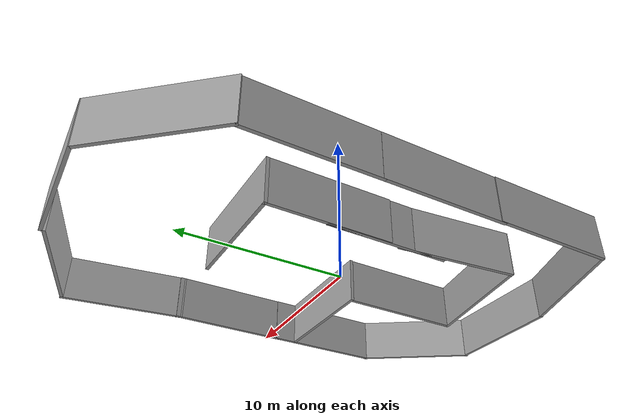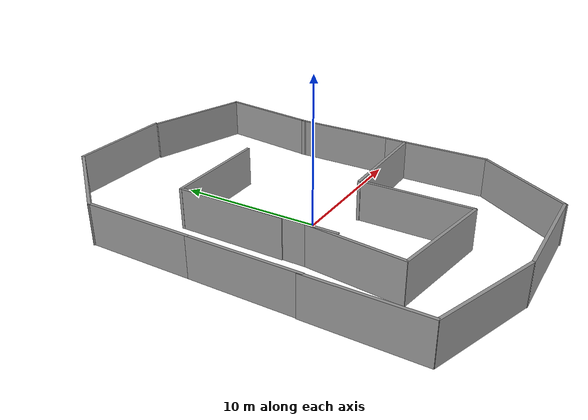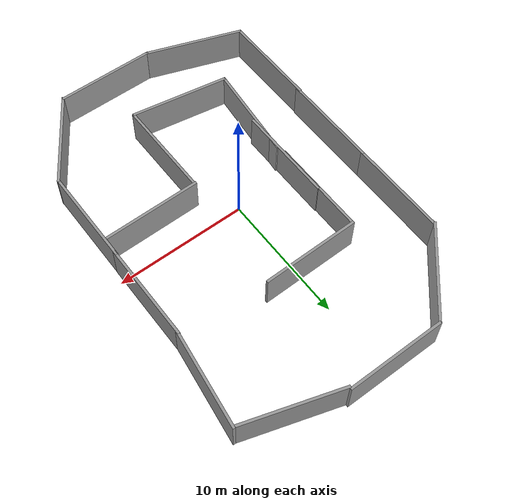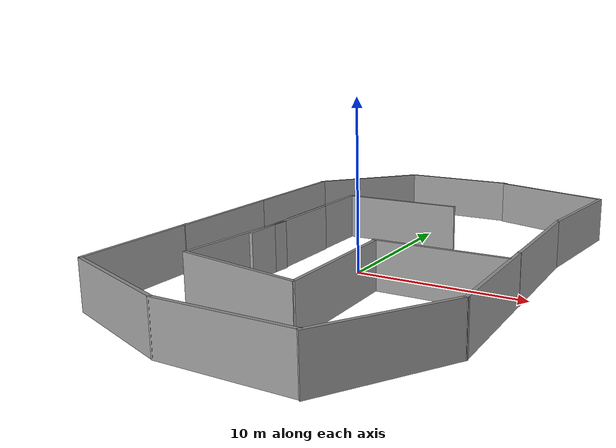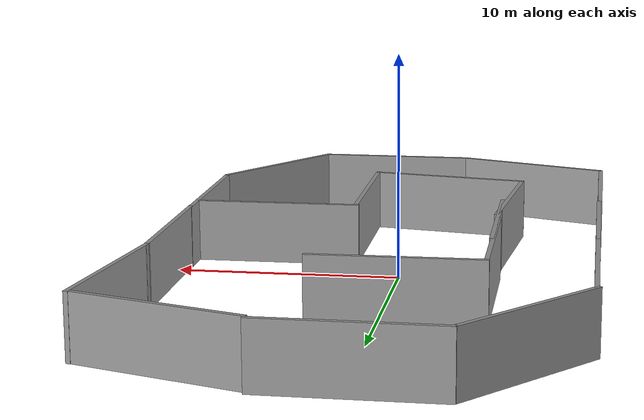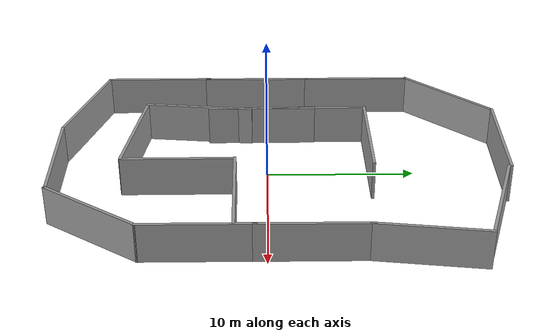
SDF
<?xml version='1.0'?>
<sdf version='1.7'>
  <model name='Untitled'>
    <model name='grey_wall'>
      <static>1</static>
      <link name='link'>
        <pose>0 0 1.4 0 -0 0</pose>
        <collision name='collision'>
          <geometry>
            <box>
              <size>7.5 0.2 2.8</size>
            </box>
          </geometry>
        </collision>
        <visual name='visual'>
          <cast_shadows>0</cast_shadows>
          <geometry>
            <box>
              <size>7.5 0.2 2.8</size>
            </box>
          </geometry>
          <material>
            <script>
              <uri>model://grey_wall/materials/scripts</uri>
              <uri>model://grey_wall/materials/textures</uri>
              <name>vrc/grey_wall</name>
            </script>
          </material>
        </visual>
      </link>
      <pose>-0.293283 15.9012 0 0 -0 0</pose>
    </model>
    <model name='grey_wall_clone'>
      <static>1</static>
      <link name='link'>
        <pose>0 0 1.4 0 -0 0</pose>
        <collision name='collision'>
          <geometry>
            <box>
              <size>7.5 0.2 2.8</size>
            </box>
          </geometry>
        </collision>
        <visual name='visual'>
          <cast_shadows>0</cast_shadows>
          <geometry>
            <box>
              <size>7.5 0.2 2.8</size>
            </box>
          </geometry>
          <material>
            <script>
              <uri>model://grey_wall/materials/scripts</uri>
              <uri>model://grey_wall/materials/textures</uri>
              <name>vrc/grey_wall</name>
            </script>
          </material>
        </visual>
      </link>
      <pose>-6.42083 13.0461 0 0 -0 0.861002</pose>
    </model>
    <model name='grey_wall_clone_0'>
      <static>1</static>
      <link name='link'>
        <pose>0 0 1.4 0 -0 0</pose>
        <collision name='collision'>
          <geometry>
            <box>
              <size>7.5 0.2 2.8</size>
            </box>
          </geometry>
        </collision>
        <visual name='visual'>
          <cast_shadows>0</cast_shadows>
          <geometry>
            <box>
              <size>7.5 0.2 2.8</size>
            </box>
          </geometry>
          <material>
            <script>
              <uri>model://grey_wall/materials/scripts</uri>
              <uri>model://grey_wall/materials/textures</uri>
              <name>vrc/grey_wall</name>
            </script>
          </material>
        </visual>
      </link>
      <pose>-8.75071 6.56529 0 0 -0 1.57059</pose>
    </model>
    <model name='grey_wall_clone_0_clone'>
      <static>1</static>
      <link name='link'>
        <pose>0 0 1.4 0 -0 0</pose>
        <collision name='collision'>
          <geometry>
            <box>
              <size>7.5 0.2 2.8</size>
            </box>
          </geometry>
        </collision>
        <visual name='visual'>
          <cast_shadows>0</cast_shadows>
          <geometry>
            <box>
              <size>7.5 0.2 2.8</size>
            </box>
          </geometry>
          <material>
            <script>
              <uri>model://grey_wall/materials/scripts</uri>
              <uri>model://grey_wall/materials/textures</uri>
              <name>vrc/grey_wall</name>
            </script>
          </material>
        </visual>
      </link>
      <pose>-8.75527 -0.751238 0 0 -0 1.57059</pose>
    </model>
    <model name='grey_wall_clone_0_clone_0'>
      <static>1</static>
      <link name='link'>
        <pose>0 0 1.4 0 -0 0</pose>
        <collision name='collision'>
          <geometry>
            <box>
              <size>7.5 0.2 2.8</size>
            </box>
          </geometry>
        </collision>
        <visual name='visual'>
          <cast_shadows>0</cast_shadows>
          <geometry>
            <box>
              <size>7.5 0.2 2.8</size>
            </box>
          </geometry>
          <material>
            <script>
              <uri>model://grey_wall/materials/scripts</uri>
              <uri>model://grey_wall/materials/textures</uri>
              <name>vrc/grey_wall</name>
            </script>
          </material>
        </visual>
      </link>
      <pose>-8.80161 -7.87636 0 0 -0 1.57059</pose>
    </model>
    <model name='grey_wall_clone_0_clone_0_clone'>
      <static>1</static>
      <link name='link'>
        <pose>0 0 1.4 0 -0 0</pose>
        <collision name='collision'>
          <geometry>
            <box>
              <size>7.5 0.2 2.8</size>
            </box>
          </geometry>
        </collision>
        <visual name='visual'>
          <cast_shadows>0</cast_shadows>
          <geometry>
            <box>
              <size>7.5 0.2 2.8</size>
            </box>
          </geometry>
          <material>
            <script>
              <uri>model://grey_wall/materials/scripts</uri>
              <uri>model://grey_wall/materials/textures</uri>
              <name>vrc/grey_wall</name>
            </script>
          </material>
        </visual>
      </link>
      <pose>9.63145 -4.32299 0 0 -0 1.57059</pose>
    </model>
    <model name='grey_wall_clone_0_clone_0_clone_0'>
      <static>1</static>
      <link name='link'>
        <pose>0 0 1.4 0 -0 0</pose>
        <collision name='collision'>
          <geometry>
            <box>
              <size>7.5 0.2 2.8</size>
            </box>
          </geometry>
        </collision>
        <visual name='visual'>
          <cast_shadows>0</cast_shadows>
          <geometry>
            <box>
              <size>7.5 0.2 2.8</size>
            </box>
          </geometry>
          <material>
            <script>
              <uri>model://grey_wall/materials/scripts</uri>
              <uri>model://grey_wall/materials/textures</uri>
              <name>vrc/grey_wall</name>
            </script>
          </material>
        </visual>
      </link>
      <pose>9.65083 2.82611 0 0 -0 1.57059</pose>
    </model>
    <model name='grey_wall_clone_0_clone_clone'>
      <static>1</static>
      <link name='link'>
        <pose>0 0 1.4 0 -0 0</pose>
        <collision name='collision'>
          <geometry>
            <box>
              <size>7.5 0.2 2.8</size>
            </box>
          </geometry>
        </collision>
        <visual name='visual'>
          <cast_shadows>0</cast_shadows>
          <geometry>
            <box>
              <size>7.5 0.2 2.8</size>
            </box>
          </geometry>
          <material>
            <script>
              <uri>model://grey_wall/materials/scripts</uri>
              <uri>model://grey_wall/materials/textures</uri>
              <name>vrc/grey_wall</name>
            </script>
          </material>
        </visual>
      </link>
      <pose>-4.34599 -0.366932 0 0 -0 1.57059</pose>
    </model>
    <model name='grey_wall_clone_0_clone_clone_0'>
      <static>1</static>
      <link name='link'>
        <pose>0 0 1.4 0 -0 0</pose>
        <collision name='collision'>
          <geometry>
            <box>
              <size>7.5 0.2 2.8</size>
            </box>
          </geometry>
        </collision>
        <visual name='visual'>
          <cast_shadows>0</cast_shadows>
          <geometry>
            <box>
              <size>7.5 0.2 2.8</size>
            </box>
          </geometry>
          <material>
            <script>
              <uri>model://grey_wall/materials/scripts</uri>
              <uri>model://grey_wall/materials/textures</uri>
              <name>vrc/grey_wall</name>
            </script>
          </material>
        </visual>
      </link>
      <pose>-4.40238 3.23855 0 0 -0 1.57059</pose>
    </model>
    <model name='grey_wall_clone_0_clone_clone_1'>
      <static>1</static>
      <link name='link'>
        <pose>0 0 1.4 0 -0 0</pose>
        <collision name='collision'>
          <geometry>
            <box>
              <size>7.5 0.2 2.8</size>
            </box>
          </geometry>
        </collision>
        <visual name='visual'>
          <cast_shadows>0</cast_shadows>
          <geometry>
            <box>
              <size>7.5 0.2 2.8</size>
            </box>
          </geometry>
          <material>
            <script>
              <uri>model://grey_wall/materials/scripts</uri>
              <uri>model://grey_wall/materials/textures</uri>
              <name>vrc/grey_wall</name>
            </script>
          </material>
        </visual>
      </link>
      <pose>-4.63049 -4.78499 0 0 -0 1.46855</pose>
    </model>
    <model name='grey_wall_clone_1'>
      <static>1</static>
      <link name='link'>
        <pose>0 0 1.4 0 -0 0</pose>
        <collision name='collision'>
          <geometry>
            <box>
              <size>7.5 0.2 2.8</size>
            </box>
          </geometry>
        </collision>
        <visual name='visual'>
          <cast_shadows>0</cast_shadows>
          <geometry>
            <box>
              <size>7.5 0.2 2.8</size>
            </box>
          </geometry>
          <material>
            <script>
              <uri>model://grey_wall/materials/scripts</uri>
              <uri>model://grey_wall/materials/textures</uri>
              <name>vrc/grey_wall</name>
            </script>
          </material>
        </visual>
      </link>
      <pose>1.85661 -14.0228 0 0 -0 0</pose>
    </model>
    <model name='grey_wall_clone_2'>
      <static>1</static>
      <link name='link'>
        <pose>0 0 1.4 0 -0 0</pose>
        <collision name='collision'>
          <geometry>
            <box>
              <size>7.5 0.2 2.8</size>
            </box>
          </geometry>
        </collision>
        <visual name='visual'>
          <cast_shadows>0</cast_shadows>
          <geometry>
            <box>
              <size>7.5 0.2 2.8</size>
            </box>
          </geometry>
          <material>
            <script>
              <uri>model://grey_wall/materials/scripts</uri>
              <uri>model://grey_wall/materials/textures</uri>
              <name>vrc/grey_wall</name>
            </script>
          </material>
        </visual>
      </link>
      <pose>7.59015 -11.0275 0 0 -0 0.978815</pose>
    </model>
    <model name='grey_wall_clone_clone'>
      <static>1</static>
      <link name='link'>
        <pose>0 0 1.4 0 -0 0</pose>
        <collision name='collision'>
          <geometry>
            <box>
              <size>7.5 0.2 2.8</size>
            </box>
          </geometry>
        </collision>
        <visual name='visual'>
          <cast_shadows>0</cast_shadows>
          <geometry>
            <box>
              <size>7.5 0.2 2.8</size>
            </box>
          </geometry>
          <material>
            <script>
              <uri>model://grey_wall/materials/scripts</uri>
              <uri>model://grey_wall/materials/textures</uri>
              <name>vrc/grey_wall</name>
            </script>
          </material>
        </visual>
      </link>
      <pose>-5.303 -12.7952 0 0 0 -0.33628</pose>
    </model>
    <model name='grey_wall_clone_clone_clone'>
      <static>1</static>
      <link name='link'>
        <pose>0 0 1.4 0 -0 0</pose>
        <collision name='collision'>
          <geometry>
            <box>
              <size>7.5 0.2 2.8</size>
            </box>
          </geometry>
        </collision>
        <visual name='visual'>
          <cast_shadows>0</cast_shadows>
          <geometry>
            <box>
              <size>7.5 0.2 2.8</size>
            </box>
          </geometry>
          <material>
            <script>
              <uri>model://grey_wall/materials/scripts</uri>
              <uri>model://grey_wall/materials/textures</uri>
              <name>vrc/grey_wall</name>
            </script>
          </material>
        </visual>
      </link>
      <pose>10.1183 9.90227 0 0 0 -1.69927</pose>
    </model>
    <model name='grey_wall_clone_clone_clone_0'>
      <static>1</static>
      <link name='link'>
        <pose>0 0 1.4 0 -0 0</pose>
        <collision name='collision'>
          <geometry>
            <box>
              <size>7.5 0.2 2.8</size>
            </box>
          </geometry>
        </collision>
        <visual name='visual'>
          <cast_shadows>0</cast_shadows>
          <geometry>
            <box>
              <size>7.5 0.2 2.8</size>
            </box>
          </geometry>
          <material>
            <script>
              <uri>model://grey_wall/materials/scripts</uri>
              <uri>model://grey_wall/materials/textures</uri>
              <name>vrc/grey_wall</name>
            </script>
          </material>
        </visual>
      </link>
      <pose>6.91157 14.6367 0 0 0 -0.302063</pose>
    </model>
    <model name='grey_wall_clone_clone_clone_1'>
      <static>1</static>
      <link name='link'>
        <pose>0 0 1.4 0 -0 0</pose>
        <collision name='collision'>
          <geometry>
            <box>
              <size>7.5 0.2 2.8</size>
            </box>
          </geometry>
        </collision>
        <visual name='visual'>
          <cast_shadows>0</cast_shadows>
          <geometry>
            <box>
              <size>7.5 0.2 2.8</size>
            </box>
          </geometry>
          <material>
            <script>
              <uri>model://grey_wall/materials/scripts</uri>
              <uri>model://grey_wall/materials/textures</uri>
              <name>vrc/grey_wall</name>
            </script>
          </material>
        </visual>
      </link>
      <pose>-1.39857 -9.05651 0 0 0 -0.165226</pose>
    </model>
    <model name='grey_wall_clone_clone_clone_1_clone'>
      <static>1</static>
      <link name='link'>
        <pose>0 0 1.4 0 -0 0</pose>
        <collision name='collision'>
          <geometry>
            <box>
              <size>7.5 0.2 2.8</size>
            </box>
          </geometry>
        </collision>
        <visual name='visual'>
          <cast_shadows>0</cast_shadows>
          <geometry>
            <box>
              <size>7.5 0.2 2.8</size>
            </box>
          </geometry>
          <material>
            <script>
              <uri>model://grey_wall/materials/scripts</uri>
              <uri>model://grey_wall/materials/textures</uri>
              <name>vrc/grey_wall</name>
            </script>
          </material>
        </visual>
      </link>
      <pose>2.25559 -5.96856 0 0 -0 1.57298</pose>
    </model>
    <model name='grey_wall_clone_clone_clone_1_clone_0'>
      <static>1</static>
      <link name='link'>
        <pose>0 0 1.4 0 -0 0</pose>
        <collision name='collision'>
          <geometry>
            <box>
              <size>7.5 0.2 2.8</size>
            </box>
          </geometry>
        </collision>
        <visual name='visual'>
          <cast_shadows>0</cast_shadows>
          <geometry>
            <box>
              <size>7.5 0.2 2.8</size>
            </box>
          </geometry>
          <material>
            <script>
              <uri>model://grey_wall/materials/scripts</uri>
              <uri>model://grey_wall/materials/textures</uri>
              <name>vrc/grey_wall</name>
            </script>
          </material>
        </visual>
      </link>
      <pose>5.84785 -2.08986 0 0 -0 0.00949</pose>
    </model>
    <model name='grey_wall_clone_clone_clone_1_clone_1'>
      <static>1</static>
      <link name='link'>
        <pose>0 0 1.4 0 -0 0</pose>
        <collision name='collision'>
          <geometry>
            <box>
              <size>7.5 0.2 2.8</size>
            </box>
          </geometry>
        </collision>
        <visual name='visual'>
          <cast_shadows>0</cast_shadows>
          <geometry>
            <box>
              <size>7.5 0.2 2.8</size>
            </box>
          </geometry>
          <material>
            <script>
              <uri>model://grey_wall/materials/scripts</uri>
              <uri>model://grey_wall/materials/textures</uri>
              <name>vrc/grey_wall</name>
            </script>
          </material>
        </visual>
      </link>
      <pose>-0.760179 6.94672 0 0 -0 0.014709</pose>
    </model>
    <static>0</static>
    <allow_auto_disable>1</allow_auto_disable>
  </model>
</sdf>
